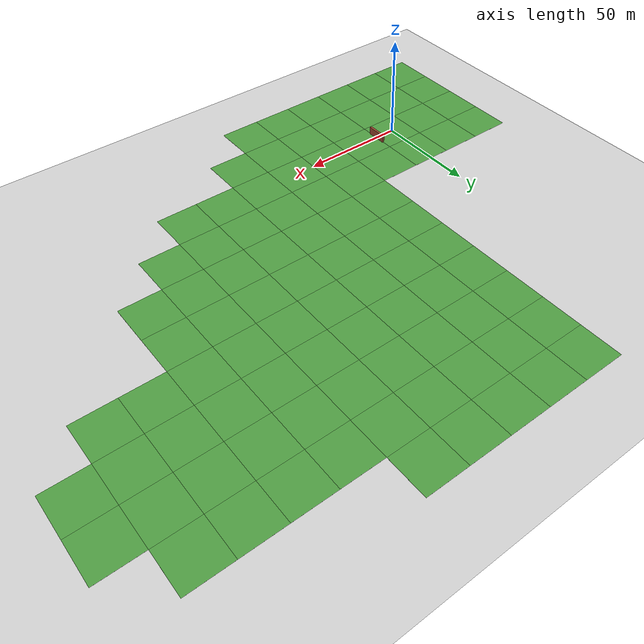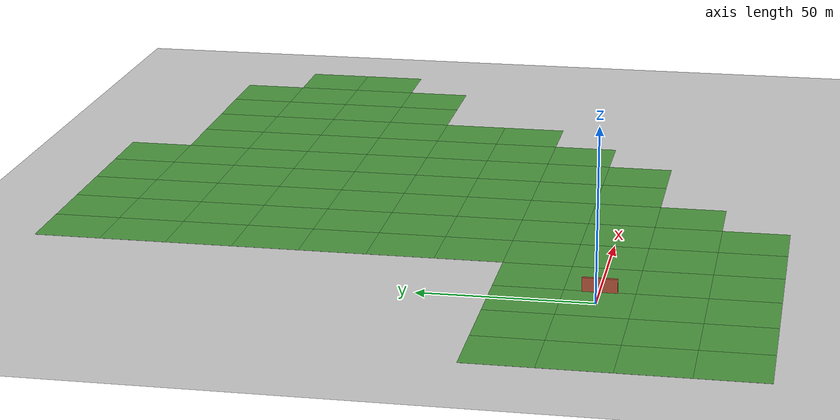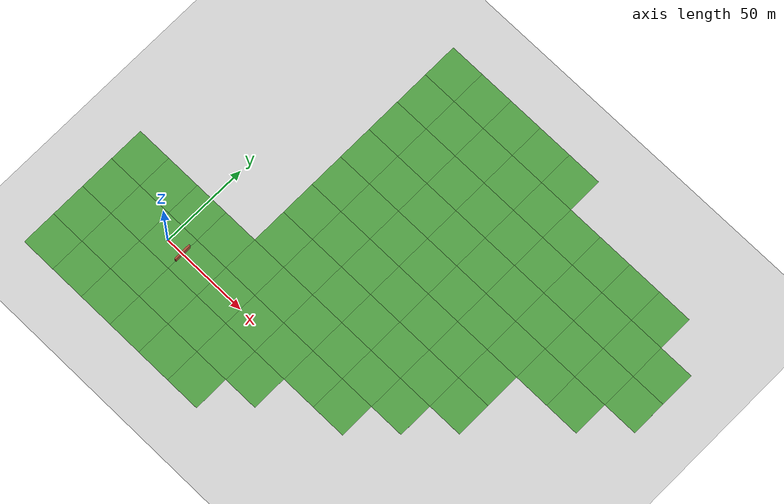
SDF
<?xml version="1.0" ?>
<sdf version="1.5">
  <world name="default">
    <!-- A global light source -->
    <light type="directional" name="sun">
      <cast_shadows>true</cast_shadows>
      <pose>0 0 10 0 0 0</pose>
      <diffuse>0.8 0.8 0.8 1</diffuse>
      <specular>0.2 0.2 0.2 1</specular>
      <attenuation>
        <range>1000</range>
        <constant>0.9</constant>
        <linear>0.01</linear>
        <quadratic>0.001</quadratic>
      </attenuation>
      <direction>0.5 0.1 -0.9</direction>
    </light>
    <!-- A ground plane -->
    <include>
      <uri>model://ground_plane</uri>
    </include>
    <include>
      <uri>model://grass_plane</uri>
    </include>
    <include>
      <static>true</static>
      <uri>model://long_wall</uri>
      <pose>10 0 2 0 0 0</pose>
    </include>
    <physics name='default_physics' default='0' type='ode'>
      <gravity>0 0 -9.8066</gravity>
      <ode>
        <solver>
          <type>quick</type>
          <iters>50</iters>
          <sor>1.0</sor>
          <use_dynamic_moi_rescaling>0</use_dynamic_moi_rescaling>
        </solver>
        <constraints>
          <cfm>0</cfm>
          <erp>0.2</erp>
          <contact_max_correcting_vel>100</contact_max_correcting_vel>
          <contact_surface_layer>0.001</contact_surface_layer>
        </constraints>
      </ode>
      <max_step_size>0.004</max_step_size>
      <real_time_factor>1</real_time_factor>
      <real_time_update_rate>250</real_time_update_rate>
      <magnetic_field>6.0e-6 2.3e-5 -4.2e-5</magnetic_field>
    </physics>
  </world>
</sdf>

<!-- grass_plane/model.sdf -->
<sdf version='1.4'>
  <model name='grass_plane'>
    <static>true</static>
    <link name='link'>
      <collision name='collision'>
        <geometry>
          <plane>
            <normal>0 0 1</normal>
            <size>500 500</size>
          </plane>
        </geometry>
        <surface>
          <friction>
            <ode>
              <mu>0.5</mu>
              <mu2>.5</mu2>
            </ode>
          </friction>
        </surface>
      </collision>

      <visual name='visual_0'>
        <pose>-40 -40 0 0 0 0</pose>

        <cast_shadows>false</cast_shadows>
        <geometry>
          <plane>
            <normal>0 0 1</normal>
            <size>20 20</size>
          </plane>
        </geometry>
        <material>
          <script>
            <uri>model://../model_source/models/grass_plane/materials/scripts</uri>
            <uri>model://../model_source/models/grass_plane/materials/textures</uri>
            <name>vrc/grass</name>
          </script>
        </material>
      </visual>

      <visual name='visual_1'>
        <pose>-20 -40 0 0 0 0</pose>

        <cast_shadows>false</cast_shadows>
        <geometry>
          <plane>
            <normal>0 0 1</normal>
            <size>20 20</size>
          </plane>
        </geometry>
        <material>
          <script>
            <uri>model://../model_source/models/grass_plane/materials/scripts</uri>
            <uri>model://../model_source/models/grass_plane/materials/textures</uri>
            <name>vrc/grass</name>
          </script>
        </material>
      </visual>

      <visual name='visual_2'>
        <pose>0 -40 0 0 0 0</pose>

        <cast_shadows>false</cast_shadows>
        <geometry>
          <plane>
            <normal>0 0 1</normal>
            <size>20 20</size>
          </plane>
        </geometry>
        <material>
          <script>
            <uri>model://../model_source/models/grass_plane/materials/scripts</uri>
            <uri>model://../model_source/models/grass_plane/materials/textures</uri>
            <name>vrc/grass</name>
          </script>
        </material>
      </visual>

      <visual name='visual_3'>
        <pose>20 -40 0 0 0 0</pose>

        <cast_shadows>false</cast_shadows>
        <geometry>
          <plane>
            <normal>0 0 1</normal>
            <size>20 20</size>
          </plane>
        </geometry>
        <material>
          <script>
            <uri>model://../model_source/models/grass_plane/materials/scripts</uri>
            <uri>model://../model_source/models/grass_plane/materials/textures</uri>
            <name>vrc/grass</name>
          </script>
        </material>
      </visual>

      <visual name='visual_4'>
        <pose>40 -40 0 0 0 0</pose>

        <cast_shadows>false</cast_shadows>
        <geometry>
          <plane>
            <normal>0 0 1</normal>
            <size>20 20</size>
          </plane>
        </geometry>
        <material>
          <script>
            <uri>model://../model_source/models/grass_plane/materials/scripts</uri>
            <uri>model://../model_source/models/grass_plane/materials/textures</uri>
            <name>vrc/grass</name>
          </script>
        </material>
      </visual>

      <visual name='visual_5'>
        <pose>60 -40 0 0 0 0</pose>

        <cast_shadows>false</cast_shadows>
        <geometry>
          <plane>
            <normal>0 0 1</normal>
            <size>20 20</size>
          </plane>
        </geometry>
        <material>
          <script>
            <uri>model://../model_source/models/grass_plane/materials/scripts</uri>
            <uri>model://../model_source/models/grass_plane/materials/textures</uri>
            <name>vrc/grass</name>
          </script>
        </material>
      </visual>

      <visual name='visual_6'>
        <pose>-40 -20 0 0 0 0</pose>

        <cast_shadows>false</cast_shadows>
        <geometry>
          <plane>
            <normal>0 0 1</normal>
            <size>20 20</size>
          </plane>
        </geometry>
        <material>
          <script>
            <uri>model://../model_source/models/grass_plane/materials/scripts</uri>
            <uri>model://../model_source/models/grass_plane/materials/textures</uri>
            <name>vrc/grass</name>
          </script>
        </material>
      </visual>

      <visual name='visual_7'>
        <pose>-20 -20 0 0 0 0</pose>

        <cast_shadows>false</cast_shadows>
        <geometry>
          <plane>
            <normal>0 0 1</normal>
            <size>20 20</size>
          </plane>
        </geometry>
        <material>
          <script>
            <uri>model://../model_source/models/grass_plane/materials/scripts</uri>
            <uri>model://../model_source/models/grass_plane/materials/textures</uri>
            <name>vrc/grass</name>
          </script>
        </material>
      </visual>

      <visual name='visual_8'>
        <pose>0 -20 0 0 0 0</pose>

        <cast_shadows>false</cast_shadows>
        <geometry>
          <plane>
            <normal>0 0 1</normal>
            <size>20 20</size>
          </plane>
        </geometry>
        <material>
          <script>
            <uri>model://../model_source/models/grass_plane/materials/scripts</uri>
            <uri>model://../model_source/models/grass_plane/materials/textures</uri>
            <name>vrc/grass</name>
          </script>
        </material>
      </visual>

      <visual name='visual_9'>
        <pose>20 -20 0 0 0 0</pose>

        <cast_shadows>false</cast_shadows>
        <geometry>
          <plane>
            <normal>0 0 1</normal>
            <size>20 20</size>
          </plane>
        </geometry>
        <material>
          <script>
            <uri>model://../model_source/models/grass_plane/materials/scripts</uri>
            <uri>model://../model_source/models/grass_plane/materials/textures</uri>
            <name>vrc/grass</name>
          </script>
        </material>
      </visual>

      <visual name='visual_10'>
        <pose>40 -20 0 0 0 0</pose>

        <cast_shadows>false</cast_shadows>
        <geometry>
          <plane>
            <normal>0 0 1</normal>
            <size>20 20</size>
          </plane>
        </geometry>
        <material>
          <script>
            <uri>model://../model_source/models/grass_plane/materials/scripts</uri>
            <uri>model://../model_source/models/grass_plane/materials/textures</uri>
            <name>vrc/grass</name>
          </script>
        </material>
      </visual>

      <visual name='visual_11'>
        <pose>60 -20 0 0 0 0</pose>

        <cast_shadows>false</cast_shadows>
        <geometry>
          <plane>
            <normal>0 0 1</normal>
            <size>20 20</size>
          </plane>
        </geometry>
        <material>
          <script>
            <uri>model://../model_source/models/grass_plane/materials/scripts</uri>
            <uri>model://../model_source/models/grass_plane/materials/textures</uri>
            <name>vrc/grass</name>
          </script>
        </material>
      </visual>

      <visual name='visual_12'>
        <pose>80 -20 0 0 0 0</pose>

        <cast_shadows>false</cast_shadows>
        <geometry>
          <plane>
            <normal>0 0 1</normal>
            <size>20 20</size>
          </plane>
        </geometry>
        <material>
          <script>
            <uri>model://../model_source/models/grass_plane/materials/scripts</uri>
            <uri>model://../model_source/models/grass_plane/materials/textures</uri>
            <name>vrc/grass</name>
          </script>
        </material>
      </visual>

      <visual name='visual_13'>
        <pose>-40 0 0 0 0 0</pose>

        <cast_shadows>false</cast_shadows>
        <geometry>
          <plane>
            <normal>0 0 1</normal>
            <size>20 20</size>
          </plane>
        </geometry>
        <material>
          <script>
            <uri>model://../model_source/models/grass_plane/materials/scripts</uri>
            <uri>model://../model_source/models/grass_plane/materials/textures</uri>
            <name>vrc/grass</name>
          </script>
        </material>
      </visual>

      <visual name='visual_14'>
        <pose>-20 0 0 0 0 0</pose>

        <cast_shadows>false</cast_shadows>
        <geometry>
          <plane>
            <normal>0 0 1</normal>
            <size>20 20</size>
          </plane>
        </geometry>
        <material>
          <script>
            <uri>model://../model_source/models/grass_plane/materials/scripts</uri>
            <uri>model://../model_source/models/grass_plane/materials/textures</uri>
            <name>vrc/grass</name>
          </script>
        </material>
      </visual>

      <visual name='visual_15'>
        <pose>0 0 0 0 0 0</pose>

        <cast_shadows>false</cast_shadows>
        <geometry>
          <plane>
            <normal>0 0 1</normal>
            <size>20 20</size>
          </plane>
        </geometry>
        <material>
          <script>
            <uri>model://../model_source/models/grass_plane/materials/scripts</uri>
            <uri>model://../model_source/models/grass_plane/materials/textures</uri>
            <name>vrc/grass</name>
          </script>
        </material>
      </visual>

      <visual name='visual_16'>
        <pose>20 0 0 0 0 0</pose>

        <cast_shadows>false</cast_shadows>
        <geometry>
          <plane>
            <normal>0 0 1</normal>
            <size>20 20</size>
          </plane>
        </geometry>
        <material>
          <script>
            <uri>model://../model_source/models/grass_plane/materials/scripts</uri>
            <uri>model://../model_source/models/grass_plane/materials/textures</uri>
            <name>vrc/grass</name>
          </script>
        </material>
      </visual>

      <visual name='visual_17'>
        <pose>40 0 0 0 0 0</pose>

        <cast_shadows>false</cast_shadows>
        <geometry>
          <plane>
            <normal>0 0 1</normal>
            <size>20 20</size>
          </plane>
        </geometry>
        <material>
          <script>
            <uri>model://../model_source/models/grass_plane/materials/scripts</uri>
            <uri>model://../model_source/models/grass_plane/materials/textures</uri>
            <name>vrc/grass</name>
          </script>
        </material>
      </visual>

      <visual name='visual_18'>
        <pose>60 0 0 0 0 0</pose>

        <cast_shadows>false</cast_shadows>
        <geometry>
          <plane>
            <normal>0 0 1</normal>
            <size>20 20</size>
          </plane>
        </geometry>
        <material>
          <script>
            <uri>model://../model_source/models/grass_plane/materials/scripts</uri>
            <uri>model://../model_source/models/grass_plane/materials/textures</uri>
            <name>vrc/grass</name>
          </script>
        </material>
      </visual>

      <visual name='visual_19'>
        <pose>80 0 0 0 0 0</pose>

        <cast_shadows>false</cast_shadows>
        <geometry>
          <plane>
            <normal>0 0 1</normal>
            <size>20 20</size>
          </plane>
        </geometry>
        <material>
          <script>
            <uri>model://../model_source/models/grass_plane/materials/scripts</uri>
            <uri>model://../model_source/models/grass_plane/materials/textures</uri>
            <name>vrc/grass</name>
          </script>
        </material>
      </visual>

      <visual name='visual_20'>
        <pose>100 0 0 0 0 0</pose>

        <cast_shadows>false</cast_shadows>
        <geometry>
          <plane>
            <normal>0 0 1</normal>
            <size>20 20</size>
          </plane>
        </geometry>
        <material>
          <script>
            <uri>model://../model_source/models/grass_plane/materials/scripts</uri>
            <uri>model://../model_source/models/grass_plane/materials/textures</uri>
            <name>vrc/grass</name>
          </script>
        </material>
      </visual>

      <visual name='visual_21'>
        <pose>120 0 0 0 0 0</pose>

        <cast_shadows>false</cast_shadows>
        <geometry>
          <plane>
            <normal>0 0 1</normal>
            <size>20 20</size>
          </plane>
        </geometry>
        <material>
          <script>
            <uri>model://../model_source/models/grass_plane/materials/scripts</uri>
            <uri>model://../model_source/models/grass_plane/materials/textures</uri>
            <name>vrc/grass</name>
          </script>
        </material>
      </visual>

      <visual name='visual_22'>
        <pose>-40 20 0 0 0 0</pose>

        <cast_shadows>false</cast_shadows>
        <geometry>
          <plane>
            <normal>0 0 1</normal>
            <size>20 20</size>
          </plane>
        </geometry>
        <material>
          <script>
            <uri>model://../model_source/models/grass_plane/materials/scripts</uri>
            <uri>model://../model_source/models/grass_plane/materials/textures</uri>
            <name>vrc/grass</name>
          </script>
        </material>
      </visual>

      <visual name='visual_23'>
        <pose>-20 20 0 0 0 0</pose>

        <cast_shadows>false</cast_shadows>
        <geometry>
          <plane>
            <normal>0 0 1</normal>
            <size>20 20</size>
          </plane>
        </geometry>
        <material>
          <script>
            <uri>model://../model_source/models/grass_plane/materials/scripts</uri>
            <uri>model://../model_source/models/grass_plane/materials/textures</uri>
            <name>vrc/grass</name>
          </script>
        </material>
      </visual>

      <visual name='visual_24'>
        <pose>0 20 0 0 0 0</pose>

        <cast_shadows>false</cast_shadows>
        <geometry>
          <plane>
            <normal>0 0 1</normal>
            <size>20 20</size>
          </plane>
        </geometry>
        <material>
          <script>
            <uri>model://../model_source/models/grass_plane/materials/scripts</uri>
            <uri>model://../model_source/models/grass_plane/materials/textures</uri>
            <name>vrc/grass</name>
          </script>
        </material>
      </visual>

      <visual name='visual_25'>
        <pose>20 20 0 0 0 0</pose>

        <cast_shadows>false</cast_shadows>
        <geometry>
          <plane>
            <normal>0 0 1</normal>
            <size>20 20</size>
          </plane>
        </geometry>
        <material>
          <script>
            <uri>model://../model_source/models/grass_plane/materials/scripts</uri>
            <uri>model://../model_source/models/grass_plane/materials/textures</uri>
            <name>vrc/grass</name>
          </script>
        </material>
      </visual>

      <visual name='visual_26'>
        <pose>40 20 0 0 0 0</pose>

        <cast_shadows>false</cast_shadows>
        <geometry>
          <plane>
            <normal>0 0 1</normal>
            <size>20 20</size>
          </plane>
        </geometry>
        <material>
          <script>
            <uri>model://../model_source/models/grass_plane/materials/scripts</uri>
            <uri>model://../model_source/models/grass_plane/materials/textures</uri>
            <name>vrc/grass</name>
          </script>
        </material>
      </visual>

      <visual name='visual_27'>
        <pose>60 20 0 0 0 0</pose>

        <cast_shadows>false</cast_shadows>
        <geometry>
          <plane>
            <normal>0 0 1</normal>
            <size>20 20</size>
          </plane>
        </geometry>
        <material>
          <script>
            <uri>model://../model_source/models/grass_plane/materials/scripts</uri>
            <uri>model://../model_source/models/grass_plane/materials/textures</uri>
            <name>vrc/grass</name>
          </script>
        </material>
      </visual>

      <visual name='visual_28'>
        <pose>80 20 0 0 0 0</pose>

        <cast_shadows>false</cast_shadows>
        <geometry>
          <plane>
            <normal>0 0 1</normal>
            <size>20 20</size>
          </plane>
        </geometry>
        <material>
          <script>
            <uri>model://../model_source/models/grass_plane/materials/scripts</uri>
            <uri>model://../model_source/models/grass_plane/materials/textures</uri>
            <name>vrc/grass</name>
          </script>
        </material>
      </visual>

      <visual name='visual_29'>
        <pose>100 20 0 0 0 0</pose>

        <cast_shadows>false</cast_shadows>
        <geometry>
          <plane>
            <normal>0 0 1</normal>
            <size>20 20</size>
          </plane>
        </geometry>
        <material>
          <script>
            <uri>model://../model_source/models/grass_plane/materials/scripts</uri>
            <uri>model://../model_source/models/grass_plane/materials/textures</uri>
            <name>vrc/grass</name>
          </script>
        </material>
      </visual>

      <visual name='visual_30'>
        <pose>120 20 0 0 0 0</pose>

        <cast_shadows>false</cast_shadows>
        <geometry>
          <plane>
            <normal>0 0 1</normal>
            <size>20 20</size>
          </plane>
        </geometry>
        <material>
          <script>
            <uri>model://../model_source/models/grass_plane/materials/scripts</uri>
            <uri>model://../model_source/models/grass_plane/materials/textures</uri>
            <name>vrc/grass</name>
          </script>
        </material>
      </visual>

      <visual name='visual_31'>
        <pose>140 20 0 0 0 0</pose>

        <cast_shadows>false</cast_shadows>
        <geometry>
          <plane>
            <normal>0 0 1</normal>
            <size>20 20</size>
          </plane>
        </geometry>
        <material>
          <script>
            <uri>model://../model_source/models/grass_plane/materials/scripts</uri>
            <uri>model://../model_source/models/grass_plane/materials/textures</uri>
            <name>vrc/grass</name>
          </script>
        </material>
      </visual>

      <visual name='visual_32'>
        <pose>40 40 0 0 0 0</pose>

        <cast_shadows>false</cast_shadows>
        <geometry>
          <plane>
            <normal>0 0 1</normal>
            <size>20 20</size>
          </plane>
        </geometry>
        <material>
          <script>
            <uri>model://../model_source/models/grass_plane/materials/scripts</uri>
            <uri>model://../model_source/models/grass_plane/materials/textures</uri>
            <name>vrc/grass</name>
          </script>
        </material>
      </visual>

      <visual name='visual_33'>
        <pose>60 40 0 0 0 0</pose>

        <cast_shadows>false</cast_shadows>
        <geometry>
          <plane>
            <normal>0 0 1</normal>
            <size>20 20</size>
          </plane>
        </geometry>
        <material>
          <script>
            <uri>model://../model_source/models/grass_plane/materials/scripts</uri>
            <uri>model://../model_source/models/grass_plane/materials/textures</uri>
            <name>vrc/grass</name>
          </script>
        </material>
      </visual>

      <visual name='visual_34'>
        <pose>80 40 0 0 0 0</pose>

        <cast_shadows>false</cast_shadows>
        <geometry>
          <plane>
            <normal>0 0 1</normal>
            <size>20 20</size>
          </plane>
        </geometry>
        <material>
          <script>
            <uri>model://../model_source/models/grass_plane/materials/scripts</uri>
            <uri>model://../model_source/models/grass_plane/materials/textures</uri>
            <name>vrc/grass</name>
          </script>
        </material>
      </visual>

      <visual name='visual_35'>
        <pose>100 40 0 0 0 0</pose>

        <cast_shadows>false</cast_shadows>
        <geometry>
          <plane>
            <normal>0 0 1</normal>
            <size>20 20</size>
          </plane>
        </geometry>
        <material>
          <script>
            <uri>model://../model_source/models/grass_plane/materials/scripts</uri>
            <uri>model://../model_source/models/grass_plane/materials/textures</uri>
            <name>vrc/grass</name>
          </script>
        </material>
      </visual>

      <visual name='visual_36'>
        <pose>120 40 0 0 0 0</pose>

        <cast_shadows>false</cast_shadows>
        <geometry>
          <plane>
            <normal>0 0 1</normal>
            <size>20 20</size>
          </plane>
        </geometry>
        <material>
          <script>
            <uri>model://../model_source/models/grass_plane/materials/scripts</uri>
            <uri>model://../model_source/models/grass_plane/materials/textures</uri>
            <name>vrc/grass</name>
          </script>
        </material>
      </visual>

      <visual name='visual_37'>
        <pose>140 40 0 0 0 0</pose>

        <cast_shadows>false</cast_shadows>
        <geometry>
          <plane>
            <normal>0 0 1</normal>
            <size>20 20</size>
          </plane>
        </geometry>
        <material>
          <script>
            <uri>model://../model_source/models/grass_plane/materials/scripts</uri>
            <uri>model://../model_source/models/grass_plane/materials/textures</uri>
            <name>vrc/grass</name>
          </script>
        </material>
      </visual>

      <visual name='visual_38'>
        <pose>160 40 0 0 0 0</pose>

        <cast_shadows>false</cast_shadows>
        <geometry>
          <plane>
            <normal>0 0 1</normal>
            <size>20 20</size>
          </plane>
        </geometry>
        <material>
          <script>
            <uri>model://../model_source/models/grass_plane/materials/scripts</uri>
            <uri>model://../model_source/models/grass_plane/materials/textures</uri>
            <name>vrc/grass</name>
          </script>
        </material>
      </visual>

      <visual name='visual_39'>
        <pose>40 60 0 0 0 0</pose>

        <cast_shadows>false</cast_shadows>
        <geometry>
          <plane>
            <normal>0 0 1</normal>
            <size>20 20</size>
          </plane>
        </geometry>
        <material>
          <script>
            <uri>model://../model_source/models/grass_plane/materials/scripts</uri>
            <uri>model://../model_source/models/grass_plane/materials/textures</uri>
            <name>vrc/grass</name>
          </script>
        </material>
      </visual>

      <visual name='visual_40'>
        <pose>60 60 0 0 0 0</pose>

        <cast_shadows>false</cast_shadows>
        <geometry>
          <plane>
            <normal>0 0 1</normal>
            <size>20 20</size>
          </plane>
        </geometry>
        <material>
          <script>
            <uri>model://../model_source/models/grass_plane/materials/scripts</uri>
            <uri>model://../model_source/models/grass_plane/materials/textures</uri>
            <name>vrc/grass</name>
          </script>
        </material>
      </visual>

      <visual name='visual_41'>
        <pose>80 60 0 0 0 0</pose>

        <cast_shadows>false</cast_shadows>
        <geometry>
          <plane>
            <normal>0 0 1</normal>
            <size>20 20</size>
          </plane>
        </geometry>
        <material>
          <script>
            <uri>model://../model_source/models/grass_plane/materials/scripts</uri>
            <uri>model://../model_source/models/grass_plane/materials/textures</uri>
            <name>vrc/grass</name>
          </script>
        </material>
      </visual>

      <visual name='visual_42'>
        <pose>100 60 0 0 0 0</pose>

        <cast_shadows>false</cast_shadows>
        <geometry>
          <plane>
            <normal>0 0 1</normal>
            <size>20 20</size>
          </plane>
        </geometry>
        <material>
          <script>
            <uri>model://../model_source/models/grass_plane/materials/scripts</uri>
            <uri>model://../model_source/models/grass_plane/materials/textures</uri>
            <name>vrc/grass</name>
          </script>
        </material>
      </visual>

      <visual name='visual_43'>
        <pose>120 60 0 0 0 0</pose>

        <cast_shadows>false</cast_shadows>
        <geometry>
          <plane>
            <normal>0 0 1</normal>
            <size>20 20</size>
          </plane>
        </geometry>
        <material>
          <script>
            <uri>model://../model_source/models/grass_plane/materials/scripts</uri>
            <uri>model://../model_source/models/grass_plane/materials/textures</uri>
            <name>vrc/grass</name>
          </script>
        </material>
      </visual>

      <visual name='visual_44'>
        <pose>140 60 0 0 0 0</pose>

        <cast_shadows>false</cast_shadows>
        <geometry>
          <plane>
            <normal>0 0 1</normal>
            <size>20 20</size>
          </plane>
        </geometry>
        <material>
          <script>
            <uri>model://../model_source/models/grass_plane/materials/scripts</uri>
            <uri>model://../model_source/models/grass_plane/materials/textures</uri>
            <name>vrc/grass</name>
          </script>
        </material>
      </visual>

      <visual name='visual_45'>
        <pose>160 60 0 0 0 0</pose>

        <cast_shadows>false</cast_shadows>
        <geometry>
          <plane>
            <normal>0 0 1</normal>
            <size>20 20</size>
          </plane>
        </geometry>
        <material>
          <script>
            <uri>model://../model_source/models/grass_plane/materials/scripts</uri>
            <uri>model://../model_source/models/grass_plane/materials/textures</uri>
            <name>vrc/grass</name>
          </script>
        </material>
      </visual>

      <visual name='visual_46'>
        <pose>40 80 0 0 0 0</pose>

        <cast_shadows>false</cast_shadows>
        <geometry>
          <plane>
            <normal>0 0 1</normal>
            <size>20 20</size>
          </plane>
        </geometry>
        <material>
          <script>
            <uri>model://../model_source/models/grass_plane/materials/scripts</uri>
            <uri>model://../model_source/models/grass_plane/materials/textures</uri>
            <name>vrc/grass</name>
          </script>
        </material>
      </visual>

      <visual name='visual_47'>
        <pose>60 80 0 0 0 0</pose>

        <cast_shadows>false</cast_shadows>
        <geometry>
          <plane>
            <normal>0 0 1</normal>
            <size>20 20</size>
          </plane>
        </geometry>
        <material>
          <script>
            <uri>model://../model_source/models/grass_plane/materials/scripts</uri>
            <uri>model://../model_source/models/grass_plane/materials/textures</uri>
            <name>vrc/grass</name>
          </script>
        </material>
      </visual>

      <visual name='visual_48'>
        <pose>80 80 0 0 0 0</pose>

        <cast_shadows>false</cast_shadows>
        <geometry>
          <plane>
            <normal>0 0 1</normal>
            <size>20 20</size>
          </plane>
        </geometry>
        <material>
          <script>
            <uri>model://../model_source/models/grass_plane/materials/scripts</uri>
            <uri>model://../model_source/models/grass_plane/materials/textures</uri>
            <name>vrc/grass</name>
          </script>
        </material>
      </visual>

      <visual name='visual_49'>
        <pose>100 80 0 0 0 0</pose>

        <cast_shadows>false</cast_shadows>
        <geometry>
          <plane>
            <normal>0 0 1</normal>
            <size>20 20</size>
          </plane>
        </geometry>
        <material>
          <script>
            <uri>model://../model_source/models/grass_plane/materials/scripts</uri>
            <uri>model://../model_source/models/grass_plane/materials/textures</uri>
            <name>vrc/grass</name>
          </script>
        </material>
      </visual>

      <visual name='visual_50'>
        <pose>120 80 0 0 0 0</pose>

        <cast_shadows>false</cast_shadows>
        <geometry>
          <plane>
            <normal>0 0 1</normal>
            <size>20 20</size>
          </plane>
        </geometry>
        <material>
          <script>
            <uri>model://../model_source/models/grass_plane/materials/scripts</uri>
            <uri>model://../model_source/models/grass_plane/materials/textures</uri>
            <name>vrc/grass</name>
          </script>
        </material>
      </visual>

      <visual name='visual_51'>
        <pose>140 80 0 0 0 0</pose>

        <cast_shadows>false</cast_shadows>
        <geometry>
          <plane>
            <normal>0 0 1</normal>
            <size>20 20</size>
          </plane>
        </geometry>
        <material>
          <script>
            <uri>model://../model_source/models/grass_plane/materials/scripts</uri>
            <uri>model://../model_source/models/grass_plane/materials/textures</uri>
            <name>vrc/grass</name>
          </script>
        </material>
      </visual>

      <visual name='visual_52'>
        <pose>160 80 0 0 0 0</pose>

        <cast_shadows>false</cast_shadows>
        <geometry>
          <plane>
            <normal>0 0 1</normal>
            <size>20 20</size>
          </plane>
        </geometry>
        <material>
          <script>
            <uri>model://../model_source/models/grass_plane/materials/scripts</uri>
            <uri>model://../model_source/models/grass_plane/materials/textures</uri>
            <name>vrc/grass</name>
          </script>
        </material>
      </visual>

      <visual name='visual_53'>
        <pose>180 80 0 0 0 0</pose>

        <cast_shadows>false</cast_shadows>
        <geometry>
          <plane>
            <normal>0 0 1</normal>
            <size>20 20</size>
          </plane>
        </geometry>
        <material>
          <script>
            <uri>model://../model_source/models/grass_plane/materials/scripts</uri>
            <uri>model://../model_source/models/grass_plane/materials/textures</uri>
            <name>vrc/grass</name>
          </script>
        </material>
      </visual>

      <visual name='visual_54'>
        <pose>200 80 0 0 0 0</pose>

        <cast_shadows>false</cast_shadows>
        <geometry>
          <plane>
            <normal>0 0 1</normal>
            <size>20 20</size>
          </plane>
        </geometry>
        <material>
          <script>
            <uri>model://../model_source/models/grass_plane/materials/scripts</uri>
            <uri>model://../model_source/models/grass_plane/materials/textures</uri>
            <name>vrc/grass</name>
          </script>
        </material>
      </visual>

      <visual name='visual_55'>
        <pose>40 100 0 0 0 0</pose>

        <cast_shadows>false</cast_shadows>
        <geometry>
          <plane>
            <normal>0 0 1</normal>
            <size>20 20</size>
          </plane>
        </geometry>
        <material>
          <script>
            <uri>model://../model_source/models/grass_plane/materials/scripts</uri>
            <uri>model://../model_source/models/grass_plane/materials/textures</uri>
            <name>vrc/grass</name>
          </script>
        </material>
      </visual>

      <visual name='visual_56'>
        <pose>60 100 0 0 0 0</pose>

        <cast_shadows>false</cast_shadows>
        <geometry>
          <plane>
            <normal>0 0 1</normal>
            <size>20 20</size>
          </plane>
        </geometry>
        <material>
          <script>
            <uri>model://../model_source/models/grass_plane/materials/scripts</uri>
            <uri>model://../model_source/models/grass_plane/materials/textures</uri>
            <name>vrc/grass</name>
          </script>
        </material>
      </visual>

      <visual name='visual_57'>
        <pose>80 100 0 0 0 0</pose>

        <cast_shadows>false</cast_shadows>
        <geometry>
          <plane>
            <normal>0 0 1</normal>
            <size>20 20</size>
          </plane>
        </geometry>
        <material>
          <script>
            <uri>model://../model_source/models/grass_plane/materials/scripts</uri>
            <uri>model://../model_source/models/grass_plane/materials/textures</uri>
            <name>vrc/grass</name>
          </script>
        </material>
      </visual>

      <visual name='visual_58'>
        <pose>100 100 0 0 0 0</pose>

        <cast_shadows>false</cast_shadows>
        <geometry>
          <plane>
            <normal>0 0 1</normal>
            <size>20 20</size>
          </plane>
        </geometry>
        <material>
          <script>
            <uri>model://../model_source/models/grass_plane/materials/scripts</uri>
            <uri>model://../model_source/models/grass_plane/materials/textures</uri>
            <name>vrc/grass</name>
          </script>
        </material>
      </visual>

      <visual name='visual_59'>
        <pose>120 100 0 0 0 0</pose>

        <cast_shadows>false</cast_shadows>
        <geometry>
          <plane>
            <normal>0 0 1</normal>
            <size>20 20</size>
          </plane>
        </geometry>
        <material>
          <script>
            <uri>model://../model_source/models/grass_plane/materials/scripts</uri>
            <uri>model://../model_source/models/grass_plane/materials/textures</uri>
            <name>vrc/grass</name>
          </script>
        </material>
      </visual>

      <visual name='visual_60'>
        <pose>140 100 0 0 0 0</pose>

        <cast_shadows>false</cast_shadows>
        <geometry>
          <plane>
            <normal>0 0 1</normal>
            <size>20 20</size>
          </plane>
        </geometry>
        <material>
          <script>
            <uri>model://../model_source/models/grass_plane/materials/scripts</uri>
            <uri>model://../model_source/models/grass_plane/materials/textures</uri>
            <name>vrc/grass</name>
          </script>
        </material>
      </visual>

      <visual name='visual_61'>
        <pose>160 100 0 0 0 0</pose>

        <cast_shadows>false</cast_shadows>
        <geometry>
          <plane>
            <normal>0 0 1</normal>
            <size>20 20</size>
          </plane>
        </geometry>
        <material>
          <script>
            <uri>model://../model_source/models/grass_plane/materials/scripts</uri>
            <uri>model://../model_source/models/grass_plane/materials/textures</uri>
            <name>vrc/grass</name>
          </script>
        </material>
      </visual>

      <visual name='visual_62'>
        <pose>180 100 0 0 0 0</pose>

        <cast_shadows>false</cast_shadows>
        <geometry>
          <plane>
            <normal>0 0 1</normal>
            <size>20 20</size>
          </plane>
        </geometry>
        <material>
          <script>
            <uri>model://../model_source/models/grass_plane/materials/scripts</uri>
            <uri>model://../model_source/models/grass_plane/materials/textures</uri>
            <name>vrc/grass</name>
          </script>
        </material>
      </visual>

      <visual name='visual_63'>
        <pose>200 100 0 0 0 0</pose>

        <cast_shadows>false</cast_shadows>
        <geometry>
          <plane>
            <normal>0 0 1</normal>
            <size>20 20</size>
          </plane>
        </geometry>
        <material>
          <script>
            <uri>model://../model_source/models/grass_plane/materials/scripts</uri>
            <uri>model://../model_source/models/grass_plane/materials/textures</uri>
            <name>vrc/grass</name>
          </script>
        </material>
      </visual>

      <visual name='visual_63a'>
        <pose>220 100 0 0 0 0</pose>

        <cast_shadows>false</cast_shadows>
        <geometry>
          <plane>
            <normal>0 0 1</normal>
            <size>20 20</size>
          </plane>
        </geometry>
        <material>
          <script>
            <uri>model://../model_source/models/grass_plane/materials/scripts</uri>
            <uri>model://../model_source/models/grass_plane/materials/textures</uri>
            <name>vrc/grass</name>
          </script>
        </material>
      </visual>

      <visual name='visual_64'>
        <pose>40 120 0 0 0 0</pose>

        <cast_shadows>false</cast_shadows>
        <geometry>
          <plane>
            <normal>0 0 1</normal>
            <size>20 20</size>
          </plane>
        </geometry>
        <material>
          <script>
            <uri>model://../model_source/models/grass_plane/materials/scripts</uri>
            <uri>model://../model_source/models/grass_plane/materials/textures</uri>
            <name>vrc/grass</name>
          </script>
        </material>
      </visual>

      <visual name='visual_65'>
        <pose>60 120 0 0 0 0</pose>

        <cast_shadows>false</cast_shadows>
        <geometry>
          <plane>
            <normal>0 0 1</normal>
            <size>20 20</size>
          </plane>
        </geometry>
        <material>
          <script>
            <uri>model://../model_source/models/grass_plane/materials/scripts</uri>
            <uri>model://../model_source/models/grass_plane/materials/textures</uri>
            <name>vrc/grass</name>
          </script>
        </material>
      </visual>

      <visual name='visual_66'>
        <pose>80 120 0 0 0 0</pose>

        <cast_shadows>false</cast_shadows>
        <geometry>
          <plane>
            <normal>0 0 1</normal>
            <size>20 20</size>
          </plane>
        </geometry>
        <material>
          <script>
            <uri>model://../model_source/models/grass_plane/materials/scripts</uri>
            <uri>model://../model_source/models/grass_plane/materials/textures</uri>
            <name>vrc/grass</name>
          </script>
        </material>
      </visual>

      <visual name='visual_67'>
        <pose>100 120 0 0 0 0</pose>

        <cast_shadows>false</cast_shadows>
        <geometry>
          <plane>
            <normal>0 0 1</normal>
            <size>20 20</size>
          </plane>
        </geometry>
        <material>
          <script>
            <uri>model://../model_source/models/grass_plane/materials/scripts</uri>
            <uri>model://../model_source/models/grass_plane/materials/textures</uri>
            <name>vrc/grass</name>
          </script>
        </material>
      </visual>

      <visual name='visual_68'>
        <pose>120 120 0 0 0 0</pose>

        <cast_shadows>false</cast_shadows>
        <geometry>
          <plane>
            <normal>0 0 1</normal>
            <size>20 20</size>
          </plane>
        </geometry>
        <material>
          <script>
            <uri>model://../model_source/models/grass_plane/materials/scripts</uri>
            <uri>model://../model_source/models/grass_plane/materials/textures</uri>
            <name>vrc/grass</name>
          </script>
        </material>
      </visual>

      <visual name='visual_69'>
        <pose>140 120 0 0 0 0</pose>

        <cast_shadows>false</cast_shadows>
        <geometry>
          <plane>
            <normal>0 0 1</normal>
            <size>20 20</size>
          </plane>
        </geometry>
        <material>
          <script>
            <uri>model://../model_source/models/grass_plane/materials/scripts</uri>
            <uri>model://../model_source/models/grass_plane/materials/textures</uri>
            <name>vrc/grass</name>
          </script>
        </material>
      </visual>

      <visual name='visual_70'>
        <pose>160 120 0 0 0 0</pose>

        <cast_shadows>false</cast_shadows>
        <geometry>
          <plane>
            <normal>0 0 1</normal>
            <size>20 20</size>
          </plane>
        </geometry>
        <material>
          <script>
            <uri>model://../model_source/models/grass_plane/materials/scripts</uri>
            <uri>model://../model_source/models/grass_plane/materials/textures</uri>
            <name>vrc/grass</name>
          </script>
        </material>
      </visual>

      <visual name='visual_71'>
        <pose>180 120 0 0 0 0</pose>

        <cast_shadows>false</cast_shadows>
        <geometry>
          <plane>
            <normal>0 0 1</normal>
            <size>20 20</size>
          </plane>
        </geometry>
        <material>
          <script>
            <uri>model://../model_source/models/grass_plane/materials/scripts</uri>
            <uri>model://../model_source/models/grass_plane/materials/textures</uri>
            <name>vrc/grass</name>
          </script>
        </material>
      </visual>

      <visual name='visual_72'>
        <pose>200 120 0 0 0 0</pose>

        <cast_shadows>false</cast_shadows>
        <geometry>
          <plane>
            <normal>0 0 1</normal>
            <size>20 20</size>
          </plane>
        </geometry>
        <material>
          <script>
            <uri>model://../model_source/models/grass_plane/materials/scripts</uri>
            <uri>model://../model_source/models/grass_plane/materials/textures</uri>
            <name>vrc/grass</name>
          </script>
        </material>
      </visual>

      <visual name='visual_72a'>
        <pose>220 120 0 0 0 0</pose>

        <cast_shadows>false</cast_shadows>
        <geometry>
          <plane>
            <normal>0 0 1</normal>
            <size>20 20</size>
          </plane>
        </geometry>
        <material>
          <script>
            <uri>model://../model_source/models/grass_plane/materials/scripts</uri>
            <uri>model://../model_source/models/grass_plane/materials/textures</uri>
            <name>vrc/grass</name>
          </script>
        </material>
      </visual>

      <visual name='visual_73'>
        <pose>40 140 0 0 0 0</pose>

        <cast_shadows>false</cast_shadows>
        <geometry>
          <plane>
            <normal>0 0 1</normal>
            <size>20 20</size>
          </plane>
        </geometry>
        <material>
          <script>
            <uri>model://../model_source/models/grass_plane/materials/scripts</uri>
            <uri>model://../model_source/models/grass_plane/materials/textures</uri>
            <name>vrc/grass</name>
          </script>
        </material>
      </visual>

      <visual name='visual_74'>
        <pose>60 140 0 0 0 0</pose>

        <cast_shadows>false</cast_shadows>
        <geometry>
          <plane>
            <normal>0 0 1</normal>
            <size>20 20</size>
          </plane>
        </geometry>
        <material>
          <script>
            <uri>model://../model_source/models/grass_plane/materials/scripts</uri>
            <uri>model://../model_source/models/grass_plane/materials/textures</uri>
            <name>vrc/grass</name>
          </script>
        </material>
      </visual>

      <visual name='visual_75'>
        <pose>80 140 0 0 0 0</pose>

        <cast_shadows>false</cast_shadows>
        <geometry>
          <plane>
            <normal>0 0 1</normal>
            <size>20 20</size>
          </plane>
        </geometry>
        <material>
          <script>
            <uri>model://../model_source/models/grass_plane/materials/scripts</uri>
            <uri>model://../model_source/models/grass_plane/materials/textures</uri>
            <name>vrc/grass</name>
          </script>
        </material>
      </visual>

      <visual name='visual_76'>
        <pose>100 140 0 0 0 0</pose>

        <cast_shadows>false</cast_shadows>
        <geometry>
          <plane>
            <normal>0 0 1</normal>
            <size>20 20</size>
          </plane>
        </geometry>
        <material>
          <script>
            <uri>model://../model_source/models/grass_plane/materials/scripts</uri>
            <uri>model://../model_source/models/grass_plane/materials/textures</uri>
            <name>vrc/grass</name>
          </script>
        </material>
      </visual>

      <visual name='visual_77'>
        <pose>120 140 0 0 0 0</pose>

        <cast_shadows>false</cast_shadows>
        <geometry>
          <plane>
            <normal>0 0 1</normal>
            <size>20 20</size>
          </plane>
        </geometry>
        <material>
          <script>
            <uri>model://../model_source/models/grass_plane/materials/scripts</uri>
            <uri>model://../model_source/models/grass_plane/materials/textures</uri>
            <name>vrc/grass</name>
          </script>
        </material>
      </visual>

      <visual name='visual_78'>
        <pose>140 140 0 0 0 0</pose>

        <cast_shadows>false</cast_shadows>
        <geometry>
          <plane>
            <normal>0 0 1</normal>
            <size>20 20</size>
          </plane>
        </geometry>
        <material>
          <script>
            <uri>model://../model_source/models/grass_plane/materials/scripts</uri>
            <uri>model://../model_source/models/grass_plane/materials/textures</uri>
            <name>vrc/grass</name>
          </script>
        </material>
      </visual>

      <visual name='visual_79'>
        <pose>160 140 0 0 0 0</pose>

        <cast_shadows>false</cast_shadows>
        <geometry>
          <plane>
            <normal>0 0 1</normal>
            <size>20 20</size>
          </plane>
        </geometry>
        <material>
          <script>
            <uri>model://../model_source/models/grass_plane/materials/scripts</uri>
            <uri>model://../model_source/models/grass_plane/materials/textures</uri>
            <name>vrc/grass</name>
          </script>
        </material>
      </visual>

      <visual name='visual_80'>
        <pose>180 140 0 0 0 0</pose>

        <cast_shadows>false</cast_shadows>
        <geometry>
          <plane>
            <normal>0 0 1</normal>
            <size>20 20</size>
          </plane>
        </geometry>
        <material>
          <script>
            <uri>model://../model_source/models/grass_plane/materials/scripts</uri>
            <uri>model://../model_source/models/grass_plane/materials/textures</uri>
            <name>vrc/grass</name>
          </script>
        </material>
      </visual>

      <visual name='visual_81'>
        <pose>200 140 0 0 0 0</pose>

        <cast_shadows>false</cast_shadows>
        <geometry>
          <plane>
            <normal>0 0 1</normal>
            <size>20 20</size>
          </plane>
        </geometry>
        <material>
          <script>
            <uri>model://../model_source/models/grass_plane/materials/scripts</uri>
            <uri>model://../model_source/models/grass_plane/materials/textures</uri>
            <name>vrc/grass</name>
          </script>
        </material>
      </visual>

      <visual name='visual_82'>
        <pose>40 160 0 0 0 0</pose>

        <cast_shadows>false</cast_shadows>
        <geometry>
          <plane>
            <normal>0 0 1</normal>
            <size>20 20</size>
          </plane>
        </geometry>
        <material>
          <script>
            <uri>model://../model_source/models/grass_plane/materials/scripts</uri>
            <uri>model://../model_source/models/grass_plane/materials/textures</uri>
            <name>vrc/grass</name>
          </script>
        </material>
      </visual>

      <visual name='visual_83'>
        <pose>60 160 0 0 0 0</pose>

        <cast_shadows>false</cast_shadows>
        <geometry>
          <plane>
            <normal>0 0 1</normal>
            <size>20 20</size>
          </plane>
        </geometry>
        <material>
          <script>
            <uri>model://../model_source/models/grass_plane/materials/scripts</uri>
            <uri>model://../model_source/models/grass_plane/materials/textures</uri>
            <name>vrc/grass</name>
          </script>
        </material>
      </visual>

      <visual name='visual_84'>
        <pose>80 160 0 0 0 0</pose>

        <cast_shadows>false</cast_shadows>
        <geometry>
          <plane>
            <normal>0 0 1</normal>
            <size>20 20</size>
          </plane>
        </geometry>
        <material>
          <script>
            <uri>model://../model_source/models/grass_plane/materials/scripts</uri>
            <uri>model://../model_source/models/grass_plane/materials/textures</uri>
            <name>vrc/grass</name>
          </script>
        </material>
      </visual>

      <visual name='visual_85'>
        <pose>100 160 0 0 0 0</pose>

        <cast_shadows>false</cast_shadows>
        <geometry>
          <plane>
            <normal>0 0 1</normal>
            <size>20 20</size>
          </plane>
        </geometry>
        <material>
          <script>
            <uri>model://../model_source/models/grass_plane/materials/scripts</uri>
            <uri>model://../model_source/models/grass_plane/materials/textures</uri>
            <name>vrc/grass</name>
          </script>
        </material>
      </visual>

      <visual name='visual_86'>
        <pose>120 160 0 0 0 0</pose>

        <cast_shadows>false</cast_shadows>
        <geometry>
          <plane>
            <normal>0 0 1</normal>
            <size>20 20</size>
          </plane>
        </geometry>
        <material>
          <script>
            <uri>model://../model_source/models/grass_plane/materials/scripts</uri>
            <uri>model://../model_source/models/grass_plane/materials/textures</uri>
            <name>vrc/grass</name>
          </script>
        </material>
      </visual>
    </link>
  </model>
</sdf>

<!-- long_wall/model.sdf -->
<sdf version='1.6'>
  <model name='long_wall'>
    <link name='link'>
      <inertial>
        <mass>1000</mass>
        <inertia>
          <ixx>0.166667</ixx>
          <ixy>0</ixy>
          <ixz>0</ixz>
          <iyy>0.166667</iyy>
          <iyz>0</iyz>
          <izz>0.166667</izz>
        </inertia>
        <pose>0 0 0 0 -0 0</pose>
      </inertial>
      <self_collide>0</self_collide>
      <enable_wind>0</enable_wind>
      <kinematic>0</kinematic>
      <pose frame=''>0 0 0 0 -0 0</pose>
      <gravity>1</gravity>
      <visual name='visual'>
        <geometry>
          <box>
            <size>1 10 4</size>
          </box>
        </geometry>
        <material>
          <script>
            <name>Gazebo/Bricks</name>
            <uri>file://media/materials/scripts/gazebo.material</uri>
          </script>
          <shader type='vertex'>
            <normal_map>__default__</normal_map>
          </shader>
          <ambient>0.3 0.3 0.3 1</ambient>
          <diffuse>0.7 0.7 0.7 1</diffuse>
          <specular>0.01 0.01 0.01 1</specular>
          <emissive>0 0 0 1</emissive>
        </material>
        <pose frame=''>0 0 0 0 -0 0</pose>
        <transparency>0</transparency>
        <cast_shadows>1</cast_shadows>
      </visual>
      <collision name='collision'>
        <laser_retro>0</laser_retro>
        <max_contacts>10</max_contacts>
        <pose frame=''>0 0 0 0 -0 0</pose>
        <geometry>
          <box>
            <size>1 10 4</size>
          </box>
        </geometry>
        <surface>
          <friction>
            <ode>
              <mu>0.1</mu>
              <mu2>0.1</mu2>
              <fdir1>0 0 0</fdir1>
              <slip1>0</slip1>
              <slip2>0</slip2>
            </ode>
            <torsional>
              <coefficient>1</coefficient>
              <patch_radius>0</patch_radius>
              <surface_radius>0</surface_radius>
              <use_patch_radius>1</use_patch_radius>
              <ode>
                <slip>0</slip>
              </ode>
            </torsional>
          </friction>
          <bounce>
            <restitution_coefficient>0</restitution_coefficient>
            <threshold>1e+06</threshold>
          </bounce>
          <contact>
            <collide_without_contact>0</collide_without_contact>
            <collide_without_contact_bitmask>1</collide_without_contact_bitmask>
            <collide_bitmask>1</collide_bitmask>
            <ode>
              <soft_cfm>0</soft_cfm>
              <soft_erp>0.2</soft_erp>
              <kp>1e+13</kp>
              <kd>1</kd>
              <max_vel>0.01</max_vel>
              <min_depth>0</min_depth>
            </ode>
            <bullet>
              <split_impulse>1</split_impulse>
              <split_impulse_penetration_threshold>-0.01</split_impulse_penetration_threshold>
              <soft_cfm>0</soft_cfm>
              <soft_erp>0.2</soft_erp>
              <kp>1e+13</kp>
              <kd>1</kd>
            </bullet>
          </contact>
        </surface>
      </collision>
    </link>
    <static>0</static>
    <allow_auto_disable>1</allow_auto_disable>
  </model>
</sdf>
